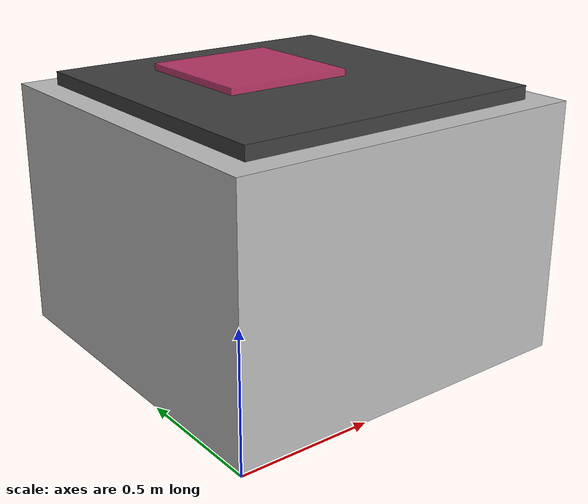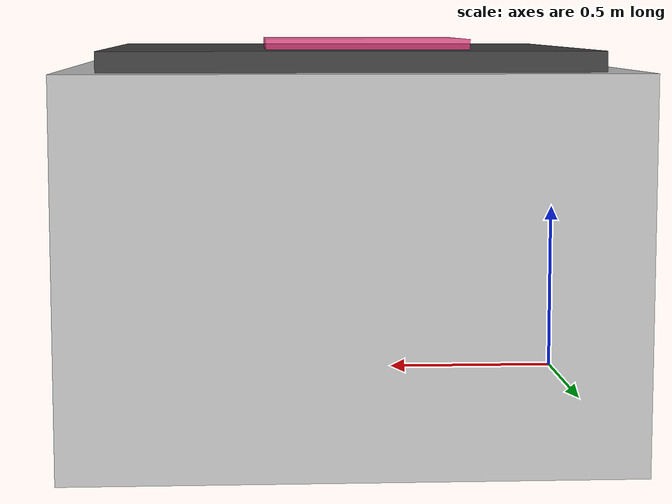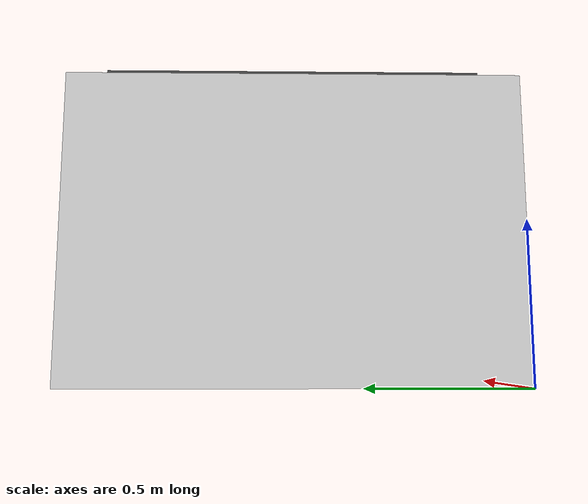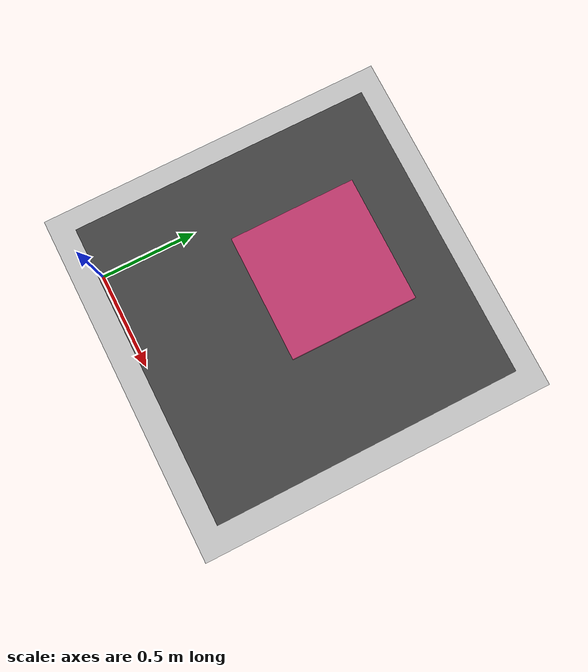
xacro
<?xml version="1.0"?>

<robot xmlns:xacro="http://www.ros.org/wiki/xacro" name="robot_cell">

    <xacro:macro name="box_count" params="count_x count_y rot_c shift_z:=0 shift_y:=0 shift_x:=0">
        <origin xyz="${count_x * 0.05 + shift_x} ${count_y * 0.05 + shift_y} ${shift_z}" rpy="0 0 ${rot_c *pi/2}"/>
    </xacro:macro>

    <link name="world"/>

    <!-- Cell -->
    <joint name="robot_cell_joint" type="fixed">
        <origin xyz="0.0 0.0 0.955" rpy="0 0 0"/>
        <parent link="world"/>
        <child link="robot_cell"/>
    </joint>
    <link name="robot_cell">
        <visual>
            <origin xyz="0.70 0.70 -0.4775" rpy="0 0 0"/>
            <geometry>
                <box size="1.40 1.40 0.955"/>
            </geometry>
            <material name="grey">
                <color rgba="0.75 0.75 0.75 1.0"/>
            </material>
        </visual>
    </link>

    <!-- Table -->
    <joint name="table_joint" type="fixed">
        <origin xyz="0.1 0.1 0.05" rpy="0 0 0"/>
        <parent link="robot_cell"/>
        <child link="table"/>
    </joint>
    <link name="table">
        <visual>
            <origin xyz="0.60 0.60 -0.025" rpy="0 0 0"/>
            <geometry>
                <box size="1.20 1.20 0.05"/>
            </geometry>
            <material name="darkgrey">
                <color rgba="0.25 0.25 0.25 1.0"/>
            </material>
        </visual>
    </link>

    <joint name="box_joint" type="fixed">
        <xacro:box_count count_x="6" count_y="10" rot_c="0"/>
        <parent link="table"/>
        <child link="box"/>
    </joint>
    <link name="box">
        <visual>
            <origin xyz="0.25 0.25 0.0" rpy="0 0 0"/>
            <geometry>
                <box size="0.5 0.5 0.05"/>
            </geometry>
            <material name="darkgrey">
                <color rgba="0.9 0.25 0.5 0.8"/>
            </material>
        </visual>
    </link>

</robot>
